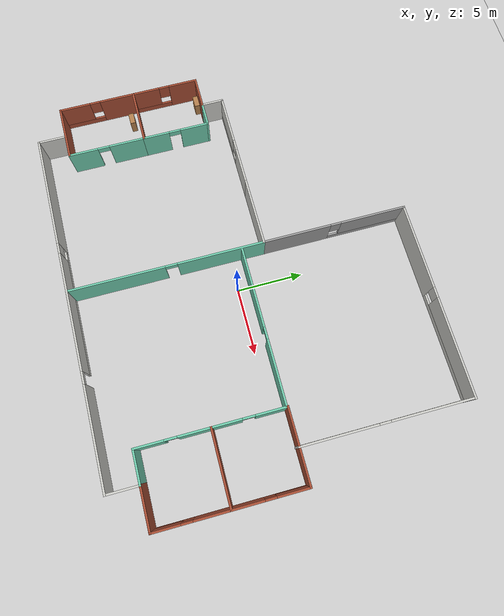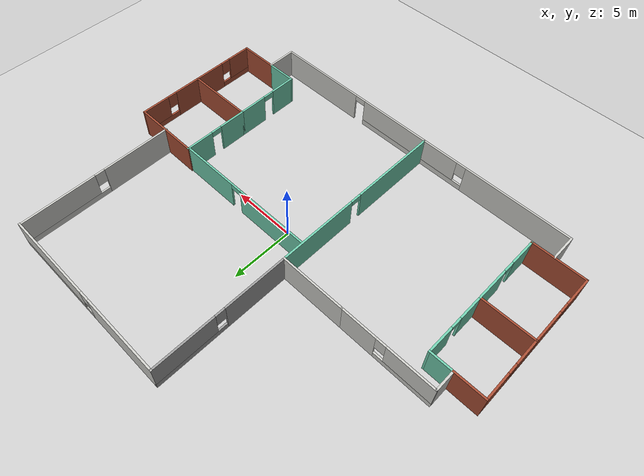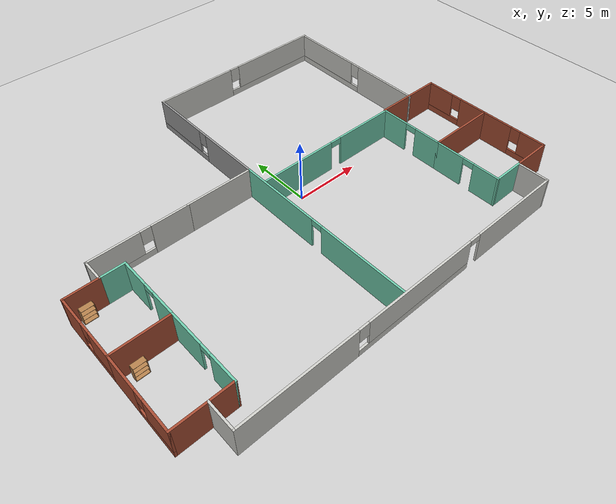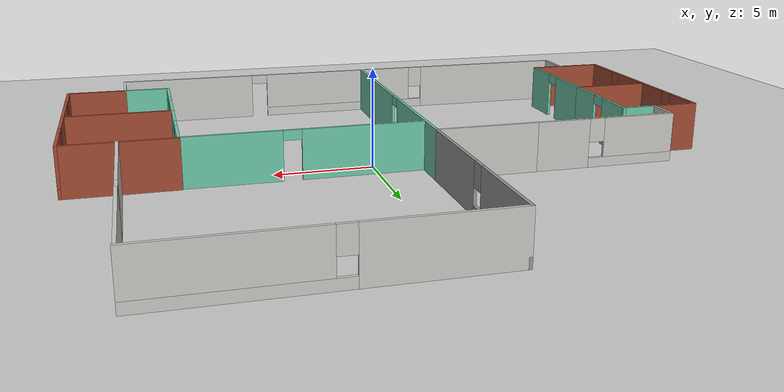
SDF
<sdf version="1.6">
 <world name="default">
  <model name="ground_plane">
   <static>1</static>
   <link name="link">
    <collision name="collision">
     <geometry><plane><normal>0 0 1</normal><size>100 100</size></plane></geometry>
     <surface><friction><ode><mu>100</mu><mu2>50</mu2></ode></friction></surface>
    </collision>
    <visual name="visual">
     <cast_shadows>0</cast_shadows>
     <geometry><plane><normal>0 0 1</normal><size>100 100</size></plane></geometry>
     <material>
      <script><uri>file://media/materials/scripts/gazebo.material</uri><name>Gazebo/Grey</name></script>
     </material>
    </visual>
   </link>
  </model>
  <model name="building">
   <pose>-1.2216 0.74618 0 0 -0 0</pose>
   <link name="Wall_0">
    <pose>-9.9736 1.9034 0 0 -0 3.14159</pose>
    <visual name="Wall_0_Visual_0">
     <pose>-2.29975 0 1.25 0 -0 0</pose>
     <geometry><box><size>2.9005 0.15 2.5</size></box></geometry>
     <material>
      <script><uri>file://media/materials/scripts/gazebo.material</uri><name>Gazebo/CeilingTiled</name></script>
      <ambient>1 1 1 1</ambient>
     </material>
     <meta><layer>0</layer></meta>
    </visual>
    <collision name="Wall_0_Collision_0">
     <geometry><box><size>2.9005 0.15 2.5</size></box></geometry>
     <pose>-2.29975 0 1.25 0 -0 0</pose>
    </collision>
    <visual name="Wall_0_Visual_1">
     <pose>1.45025 0 0.25 0 -0 0</pose>
     <geometry><box><size>4.5995 0.15 0.5</size></box></geometry>
     <material>
      <script><uri>file://media/materials/scripts/gazebo.material</uri><name>Gazebo/CeilingTiled</name></script>
      <ambient>1 1 1 1</ambient>
     </material>
     <meta><layer>0</layer></meta>
    </visual>
    <collision name="Wall_0_Collision_1">
     <geometry><box><size>4.5995 0.15 0.5</size></box></geometry>
     <pose>1.45025 0 0.25 0 -0 0</pose>
    </collision>
    <visual name="Wall_0_Visual_2">
     <pose>1.85025 0 1.5 0 -0 0</pose>
     <geometry><box><size>3.7995 0.15 2</size></box></geometry>
     <material>
      <script><uri>file://media/materials/scripts/gazebo.material</uri><name>Gazebo/CeilingTiled</name></script>
      <ambient>1 1 1 1</ambient>
     </material>
     <meta><layer>0</layer></meta>
    </visual>
    <collision name="Wall_0_Collision_2">
     <geometry><box><size>3.7995 0.15 2</size></box></geometry>
     <pose>1.85025 0 1.5 0 -0 0</pose>
    </collision>
    <visual name="Wall_0_Visual_3">
     <pose>-0.449501 0 1.9 0 -0 0</pose>
     <geometry><box><size>0.8 0.15 1.2</size></box></geometry>
     <material>
      <script><uri>file://media/materials/scripts/gazebo.material</uri><name>Gazebo/CeilingTiled</name></script>
      <ambient>1 1 1 1</ambient>
     </material>
     <meta><layer>0</layer></meta>
    </visual>
    <collision name="Wall_0_Collision_3">
     <geometry><box><size>0.8 0.15 1.2</size></box></geometry>
     <pose>-0.449501 0 1.9 0 -0 0</pose>
    </collision>
   </link>
   <link name="Wall_1">
    <collision name="Wall_1_Collision">
     <geometry><box><size>0.15 0.15 2.5</size></box></geometry>
     <pose>0 0 1.25 0 -0 0</pose>
    </collision>
    <visual name="Wall_1_Visual">
     <pose>0 0 1.25 0 -0 0</pose>
     <geometry><box><size>0.15 0.15 2.5</size></box></geometry>
     <material>
      <script><uri>file://media/materials/scripts/gazebo.material</uri><name>Gazebo/Grey</name></script>
      <ambient>1 1 1 1</ambient>
     </material>
     <meta><layer>0</layer></meta>
    </visual>
    <pose>-13.6486 1.9034 0 0 -0 0</pose>
   </link>
   <link name="Wall_10">
    <collision name="Wall_10_Collision">
     <geometry><box><size>1.9 0.15 2.5</size></box></geometry>
     <pose>0 0 1.25 0 -0 0</pose>
    </collision>
    <visual name="Wall_10_Visual">
     <pose>0 0 1.25 0 -0 0</pose>
     <geometry><box><size>1.9 0.15 2.5</size></box></geometry>
     <material>
      <script><uri>file://media/materials/scripts/gazebo.material</uri><name>Gazebo/Grey</name></script>
      <ambient>0.435294 0.796078 0.67451 1</ambient>
     </material>
     <meta><layer>0</layer></meta>
    </visual>
    <pose>-12.7736 0.303397 0 0 -0 3.14159</pose>
   </link>
   <link name="Wall_12">
    <pose>-15.9986 -7.7216 0 0 0 -1.5708</pose>
    <visual name="Wall_12_Visual_0">
     <pose>-1.61405 0 1.25 0 -0 0</pose>
     <geometry><box><size>2.7719 0.15 2.5</size></box></geometry>
     <material>
      <script><uri>file://media/materials/scripts/gazebo.material</uri><name>Gazebo/Bricks</name></script>
      <ambient>1 1 1 1</ambient>
     </material>
     <meta><layer>0</layer></meta>
    </visual>
    <collision name="Wall_12_Collision_0">
     <geometry><box><size>2.7719 0.15 2.5</size></box></geometry>
     <pose>-1.61405 0 1.25 0 -0 0</pose>
    </collision>
    <visual name="Wall_12_Visual_1">
     <pose>1.38595 0 0.25 0 -0 0</pose>
     <geometry><box><size>3.2281 0.15 0.5</size></box></geometry>
     <material>
      <script><uri>file://media/materials/scripts/gazebo.material</uri><name>Gazebo/Bricks</name></script>
      <ambient>1 1 1 1</ambient>
     </material>
     <meta><layer>0</layer></meta>
    </visual>
    <collision name="Wall_12_Collision_1">
     <geometry><box><size>3.2281 0.15 0.5</size></box></geometry>
     <pose>1.38595 0 0.25 0 -0 0</pose>
    </collision>
    <visual name="Wall_12_Visual_2">
     <pose>1.78595 0 1.5 0 -0 0</pose>
     <geometry><box><size>2.4281 0.15 2</size></box></geometry>
     <material>
      <script><uri>file://media/materials/scripts/gazebo.material</uri><name>Gazebo/Bricks</name></script>
      <ambient>1 1 1 1</ambient>
     </material>
     <meta><layer>0</layer></meta>
    </visual>
    <collision name="Wall_12_Collision_2">
     <geometry><box><size>2.4281 0.15 2</size></box></geometry>
     <pose>1.78595 0 1.5 0 -0 0</pose>
    </collision>
    <visual name="Wall_12_Visual_3">
     <pose>0.171899 0 1.9 0 -0 0</pose>
     <geometry><box><size>0.8 0.15 1.2</size></box></geometry>
     <material>
      <script><uri>file://media/materials/scripts/gazebo.material</uri><name>Gazebo/Bricks</name></script>
      <ambient>1 1 1 1</ambient>
     </material>
     <meta><layer>0</layer></meta>
    </visual>
    <collision name="Wall_12_Collision_3">
     <geometry><box><size>0.8 0.15 1.2</size></box></geometry>
     <pose>0.171899 0 1.9 0 -0 0</pose>
    </collision>
   </link>
   <link name="Wall_13">
    <collision name="Wall_13_Collision">
     <geometry><box><size>4.25 0.15 2.5</size></box></geometry>
     <pose>0 0 1.25 0 -0 0</pose>
    </collision>
    <visual name="Wall_13_Visual">
     <pose>0 0 1.25 0 -0 0</pose>
     <geometry><box><size>4.25 0.15 2.5</size></box></geometry>
     <material>
      <script><uri>file://media/materials/scripts/gazebo.material</uri><name>Gazebo/Bricks</name></script>
      <ambient>1 1 1 1</ambient>
     </material>
     <meta><layer>0</layer></meta>
    </visual>
    <pose>-13.9486 -10.6466 0 0 -0 0</pose>
   </link>
   <link name="Wall_14">
    <pose>-11.8986 -7.7216 0 0 -0 1.5708</pose>
    <visual name="Wall_14_Visual_0">
     <pose>-1.85643 0 1.25 0 -0 0</pose>
     <geometry><box><size>2.28714 0.15 2.5</size></box></geometry>
     <material>
      <script><uri>file://media/materials/scripts/gazebo.material</uri><name>Gazebo/Grey</name></script>
      <ambient>0.435294 0.796078 0.67451 1</ambient>
     </material>
     <meta><layer>0</layer></meta>
    </visual>
    <collision name="Wall_14_Collision_0">
     <geometry><box><size>2.28714 0.15 2.5</size></box></geometry>
     <pose>-1.85643 0 1.25 0 -0 0</pose>
    </collision>
    <visual name="Wall_14_Visual_1">
     <pose>1.59357 0 1.25 0 -0 0</pose>
     <geometry><box><size>2.81286 0.15 2.5</size></box></geometry>
     <material>
      <script><uri>file://media/materials/scripts/gazebo.material</uri><name>Gazebo/Grey</name></script>
      <ambient>0.435294 0.796078 0.67451 1</ambient>
     </material>
     <meta><layer>0</layer></meta>
    </visual>
    <collision name="Wall_14_Collision_1">
     <geometry><box><size>2.81286 0.15 2.5</size></box></geometry>
     <pose>1.59357 0 1.25 0 -0 0</pose>
    </collision>
    <visual name="Wall_14_Visual_2">
     <pose>-0.262862 0 2.25 0 -0 0</pose>
     <geometry><box><size>0.9 0.15 0.5</size></box></geometry>
     <material>
      <script><uri>file://media/materials/scripts/gazebo.material</uri><name>Gazebo/Grey</name></script>
      <ambient>0.435294 0.796078 0.67451 1</ambient>
     </material>
     <meta><layer>0</layer></meta>
    </visual>
    <collision name="Wall_14_Collision_2">
     <geometry><box><size>0.9 0.15 0.5</size></box></geometry>
     <pose>-0.262862 0 2.25 0 -0 0</pose>
    </collision>
   </link>
   <link name="Wall_17">
    <collision name="Wall_17_Collision">
     <geometry><box><size>2.25 0.15 2.5</size></box></geometry>
     <pose>0 0 1.25 0 -0 0</pose>
    </collision>
    <visual name="Wall_17_Visual">
     <pose>0 0 1.25 0 -0 0</pose>
     <geometry><box><size>2.25 0.15 2.5</size></box></geometry>
     <material>
      <script><uri>file://media/materials/scripts/gazebo.material</uri><name>Gazebo/CeilingTiled</name></script>
      <ambient>1 1 1 1</ambient>
     </material>
     <meta><layer>0</layer></meta>
    </visual>
    <pose>-13.6014 -11.7034 0 0 0 -1.5708</pose>
   </link>
   <link name="Wall_176">
    <pose>-1.1986 7.3284 0 0 -0 1.5708</pose>
    <visual name="Wall_176_Visual_0">
     <pose>-2.89271 0 1.25 0 -0 0</pose>
     <geometry><box><size>5.21457 0.15 2.5</size></box></geometry>
     <material>
      <script><uri>file://media/materials/scripts/gazebo.material</uri><name>Gazebo/Grey</name></script>
      <ambient>1 1 1 1</ambient>
     </material>
     <meta><layer>0</layer></meta>
    </visual>
    <collision name="Wall_176_Collision_0">
     <geometry><box><size>5.21457 0.15 2.5</size></box></geometry>
     <pose>-2.89271 0 1.25 0 -0 0</pose>
    </collision>
    <visual name="Wall_176_Visual_1">
     <pose>2.60729 0 0.25 0 -0 0</pose>
     <geometry><box><size>5.78543 0.15 0.5</size></box></geometry>
     <material>
      <script><uri>file://media/materials/scripts/gazebo.material</uri><name>Gazebo/Grey</name></script>
      <ambient>1 1 1 1</ambient>
     </material>
     <meta><layer>0</layer></meta>
    </visual>
    <collision name="Wall_176_Collision_1">
     <geometry><box><size>5.78543 0.15 0.5</size></box></geometry>
     <pose>2.60729 0 0.25 0 -0 0</pose>
    </collision>
    <visual name="Wall_176_Visual_2">
     <pose>3.00728 0 1.5 0 -0 0</pose>
     <geometry><box><size>4.98543 0.15 2</size></box></geometry>
     <material>
      <script><uri>file://media/materials/scripts/gazebo.material</uri><name>Gazebo/Grey</name></script>
      <ambient>1 1 1 1</ambient>
     </material>
     <meta><layer>0</layer></meta>
    </visual>
    <collision name="Wall_176_Collision_2">
     <geometry><box><size>4.98543 0.15 2</size></box></geometry>
     <pose>3.00728 0 1.5 0 -0 0</pose>
    </collision>
    <visual name="Wall_176_Visual_3">
     <pose>0.11457 0 1.9 0 -0 0</pose>
     <geometry><box><size>0.8 0.15 1.2</size></box></geometry>
     <material>
      <script><uri>file://media/materials/scripts/gazebo.material</uri><name>Gazebo/Grey</name></script>
      <ambient>1 1 1 1</ambient>
     </material>
     <meta><layer>0</layer></meta>
    </visual>
    <collision name="Wall_176_Collision_3">
     <geometry><box><size>0.8 0.15 1.2</size></box></geometry>
     <pose>0.11457 0 1.9 0 -0 0</pose>
    </collision>
   </link>
   <link name="Wall_179">
    <pose>6.1014 12.7534 0 0 -0 0</pose>
    <visual name="Wall_179_Visual_0">
     <pose>-4.09779 0 1.25 0 -0 0</pose>
     <geometry><box><size>6.55441 0.15 2.5</size></box></geometry>
     <material>
      <script><uri>file://media/materials/scripts/gazebo.material</uri><name>Gazebo/CeilingTiled</name></script>
      <ambient>1 1 1 1</ambient>
     </material>
     <meta><layer>0</layer></meta>
    </visual>
    <collision name="Wall_179_Collision_0">
     <geometry><box><size>6.55441 0.15 2.5</size></box></geometry>
     <pose>-4.09779 0 1.25 0 -0 0</pose>
    </collision>
    <visual name="Wall_179_Visual_1">
     <pose>3.27721 0 0.25 0 -0 0</pose>
     <geometry><box><size>8.19559 0.15 0.5</size></box></geometry>
     <material>
      <script><uri>file://media/materials/scripts/gazebo.material</uri><name>Gazebo/CeilingTiled</name></script>
      <ambient>1 1 1 1</ambient>
     </material>
     <meta><layer>0</layer></meta>
    </visual>
    <collision name="Wall_179_Collision_1">
     <geometry><box><size>8.19559 0.15 0.5</size></box></geometry>
     <pose>3.27721 0 0.25 0 -0 0</pose>
    </collision>
    <visual name="Wall_179_Visual_2">
     <pose>3.67721 0 1.5 0 -0 0</pose>
     <geometry><box><size>7.39559 0.15 2</size></box></geometry>
     <material>
      <script><uri>file://media/materials/scripts/gazebo.material</uri><name>Gazebo/CeilingTiled</name></script>
      <ambient>1 1 1 1</ambient>
     </material>
     <meta><layer>0</layer></meta>
    </visual>
    <collision name="Wall_179_Collision_2">
     <geometry><box><size>7.39559 0.15 2</size></box></geometry>
     <pose>3.67721 0 1.5 0 -0 0</pose>
    </collision>
    <visual name="Wall_179_Visual_3">
     <pose>-0.420588 0 1.9 0 -0 0</pose>
     <geometry><box><size>0.8 0.15 1.2</size></box></geometry>
     <material>
      <script><uri>file://media/materials/scripts/gazebo.material</uri><name>Gazebo/CeilingTiled</name></script>
      <ambient>1 1 1 1</ambient>
     </material>
     <meta><layer>0</layer></meta>
    </visual>
    <collision name="Wall_179_Collision_3">
     <geometry><box><size>0.8 0.15 1.2</size></box></geometry>
     <pose>-0.420588 0 1.9 0 -0 0</pose>
    </collision>
   </link>
   <link name="Wall_18">
    <pose>-0.301402 -12.7534 0 0 -0 0</pose>
    <visual name="Wall_18_Visual_0">
     <pose>-9.04091 0 1.25 0 -0 0</pose>
     <geometry><box><size>8.66818 0.15 2.5</size></box></geometry>
     <material>
      <script><uri>file://media/materials/scripts/gazebo.material</uri><name>Gazebo/CeilingTiled</name></script>
      <ambient>1 1 1 1</ambient>
     </material>
     <meta><layer>0</layer></meta>
    </visual>
    <collision name="Wall_18_Collision_0">
     <geometry><box><size>8.66818 0.15 2.5</size></box></geometry>
     <pose>-9.04091 0 1.25 0 -0 0</pose>
    </collision>
    <visual name="Wall_18_Visual_1">
     <pose>9.64638 0 1.25 0 -0 0</pose>
     <geometry><box><size>7.45723 0.15 2.5</size></box></geometry>
     <material>
      <script><uri>file://media/materials/scripts/gazebo.material</uri><name>Gazebo/CeilingTiled</name></script>
      <ambient>1 1 1 1</ambient>
     </material>
     <meta><layer>0</layer></meta>
    </visual>
    <collision name="Wall_18_Collision_1">
     <geometry><box><size>7.45723 0.15 2.5</size></box></geometry>
     <pose>9.64638 0 1.25 0 -0 0</pose>
    </collision>
    <visual name="Wall_18_Visual_2">
     <pose>0.155473 0 0.25 0 -0 0</pose>
     <geometry><box><size>9.72459 0.15 0.5</size></box></geometry>
     <material>
      <script><uri>file://media/materials/scripts/gazebo.material</uri><name>Gazebo/CeilingTiled</name></script>
      <ambient>1 1 1 1</ambient>
     </material>
     <meta><layer>0</layer></meta>
    </visual>
    <collision name="Wall_18_Collision_2">
     <geometry><box><size>9.72459 0.15 0.5</size></box></geometry>
     <pose>0.155473 0 0.25 0 -0 0</pose>
    </collision>
    <visual name="Wall_18_Visual_3">
     <pose>0.555473 0 1.5 0 -0 0</pose>
     <geometry><box><size>8.92459 0.15 2</size></box></geometry>
     <material>
      <script><uri>file://media/materials/scripts/gazebo.material</uri><name>Gazebo/CeilingTiled</name></script>
      <ambient>1 1 1 1</ambient>
     </material>
     <meta><layer>0</layer></meta>
    </visual>
    <collision name="Wall_18_Collision_3">
     <geometry><box><size>8.92459 0.15 2</size></box></geometry>
     <pose>0.555473 0 1.5 0 -0 0</pose>
    </collision>
    <visual name="Wall_18_Visual_4">
     <pose>-4.30682 0 1.9 0 -0 0</pose>
     <geometry><box><size>0.8 0.15 1.2</size></box></geometry>
     <material>
      <script><uri>file://media/materials/scripts/gazebo.material</uri><name>Gazebo/CeilingTiled</name></script>
      <ambient>1 1 1 1</ambient>
     </material>
     <meta><layer>0</layer></meta>
    </visual>
    <collision name="Wall_18_Collision_4">
     <geometry><box><size>0.8 0.15 1.2</size></box></geometry>
     <pose>-4.30682 0 1.9 0 -0 0</pose>
    </collision>
    <visual name="Wall_18_Visual_5">
     <pose>5.46777 0 2.25 0 -0 0</pose>
     <geometry><box><size>0.9 0.15 0.5</size></box></geometry>
     <material>
      <script><uri>file://media/materials/scripts/gazebo.material</uri><name>Gazebo/CeilingTiled</name></script>
      <ambient>1 1 1 1</ambient>
     </material>
     <meta><layer>0</layer></meta>
    </visual>
    <collision name="Wall_18_Collision_5">
     <geometry><box><size>0.9 0.15 0.5</size></box></geometry>
     <pose>5.46777 0 2.25 0 -0 0</pose>
    </collision>
   </link>
   <link name="Wall_181">
    <pose>4.74603 0.215542 0 0 -0 0</pose>
    <visual name="Wall_181_Visual_0">
     <pose>-2.83801 0 1.25 0 -0 0</pose>
     <geometry><box><size>6.07398 0.15 2.5</size></box></geometry>
     <material>
      <script><uri>file://media/materials/scripts/gazebo.material</uri><name>Gazebo/Grey</name></script>
      <ambient>0.435294 0.796078 0.67451 1</ambient>
     </material>
     <meta><layer>0</layer></meta>
    </visual>
    <collision name="Wall_181_Collision_0">
     <geometry><box><size>6.07398 0.15 2.5</size></box></geometry>
     <pose>-2.83801 0 1.25 0 -0 0</pose>
    </collision>
    <visual name="Wall_181_Visual_1">
     <pose>3.48699 0 1.25 0 -0 0</pose>
     <geometry><box><size>4.77602 0.15 2.5</size></box></geometry>
     <material>
      <script><uri>file://media/materials/scripts/gazebo.material</uri><name>Gazebo/Grey</name></script>
      <ambient>0.435294 0.796078 0.67451 1</ambient>
     </material>
     <meta><layer>0</layer></meta>
    </visual>
    <collision name="Wall_181_Collision_1">
     <geometry><box><size>4.77602 0.15 2.5</size></box></geometry>
     <pose>3.48699 0 1.25 0 -0 0</pose>
    </collision>
    <visual name="Wall_181_Visual_2">
     <pose>0.648978 0 2.25 0 -0 0</pose>
     <geometry><box><size>0.9 0.15 0.5</size></box></geometry>
     <material>
      <script><uri>file://media/materials/scripts/gazebo.material</uri><name>Gazebo/Grey</name></script>
      <ambient>0.435294 0.796078 0.67451 1</ambient>
     </material>
     <meta><layer>0</layer></meta>
    </visual>
    <collision name="Wall_181_Collision_2">
     <geometry><box><size>0.9 0.15 0.5</size></box></geometry>
     <pose>0.648978 0 2.25 0 -0 0</pose>
    </collision>
   </link>
   <link name="Wall_19">
    <collision name="Wall_19_Collision">
     <geometry><box><size>2.5 0.15 2.5</size></box></geometry>
     <pose>0 0 1.25 0 -0 0</pose>
    </collision>
    <visual name="Wall_19_Visual">
     <pose>0 0 1.25 0 -0 0</pose>
     <geometry><box><size>2.5 0.15 2.5</size></box></geometry>
     <material>
      <script><uri>file://media/materials/scripts/gazebo.material</uri><name>Gazebo/CeilingTiled</name></script>
      <ambient>1 1 1 1</ambient>
     </material>
     <meta><layer>0</layer></meta>
    </visual>
    <pose>12.9986 -11.5784 0 0 -0 1.5708</pose>
   </link>
   <link name="Wall_20">
    <collision name="Wall_20_Collision">
     <geometry><box><size>2.5 0.15 2.5</size></box></geometry>
     <pose>0 0 1.25 0 -0 0</pose>
    </collision>
    <visual name="Wall_20_Visual">
     <pose>0 0 1.25 0 -0 0</pose>
     <geometry><box><size>2.5 0.15 2.5</size></box></geometry>
     <material>
      <script><uri>file://media/materials/scripts/gazebo.material</uri><name>Gazebo/Grey</name></script>
      <ambient>0.435294 0.796078 0.67451 1</ambient>
     </material>
     <meta><layer>0</layer></meta>
    </visual>
    <pose>11.8236 -10.4034 0 0 -0 3.14159</pose>
   </link>
   <link name="Wall_21">
    <pose>10.6486 -7.7284 0 0 -0 1.5708</pose>
    <visual name="Wall_21_Visual_0">
     <pose>-1.65981 0 1.25 0 -0 0</pose>
     <geometry><box><size>2.18038 0.15 2.5</size></box></geometry>
     <material>
      <script><uri>file://media/materials/scripts/gazebo.material</uri><name>Gazebo/Grey</name></script>
      <ambient>0.435294 0.796078 0.67451 1</ambient>
     </material>
     <meta><layer>0</layer></meta>
    </visual>
    <collision name="Wall_21_Collision_0">
     <geometry><box><size>2.18038 0.15 2.5</size></box></geometry>
     <pose>-1.65981 0 1.25 0 -0 0</pose>
    </collision>
    <visual name="Wall_21_Visual_1">
     <pose>1.54019 0 1.25 0 -0 0</pose>
     <geometry><box><size>2.41962 0.15 2.5</size></box></geometry>
     <material>
      <script><uri>file://media/materials/scripts/gazebo.material</uri><name>Gazebo/Grey</name></script>
      <ambient>0.435294 0.796078 0.67451 1</ambient>
     </material>
     <meta><layer>0</layer></meta>
    </visual>
    <collision name="Wall_21_Collision_1">
     <geometry><box><size>2.41962 0.15 2.5</size></box></geometry>
     <pose>1.54019 0 1.25 0 -0 0</pose>
    </collision>
    <visual name="Wall_21_Visual_2">
     <pose>-0.119622 0 2.25 0 -0 0</pose>
     <geometry><box><size>0.9 0.15 0.5</size></box></geometry>
     <material>
      <script><uri>file://media/materials/scripts/gazebo.material</uri><name>Gazebo/Grey</name></script>
      <ambient>0.435294 0.796078 0.67451 1</ambient>
     </material>
     <meta><layer>0</layer></meta>
    </visual>
    <collision name="Wall_21_Collision_2">
     <geometry><box><size>0.9 0.15 0.5</size></box></geometry>
     <pose>-0.119622 0 2.25 0 -0 0</pose>
    </collision>
   </link>
   <link name="Wall_22">
    <collision name="Wall_22_Collision">
     <geometry><box><size>5.5 0.15 2.5</size></box></geometry>
     <pose>0 0 1.25 0 -0 0</pose>
    </collision>
    <visual name="Wall_22_Visual">
     <pose>0 0 1.25 0 -0 0</pose>
     <geometry><box><size>5.5 0.15 2.5</size></box></geometry>
     <material>
      <script><uri>file://media/materials/scripts/gazebo.material</uri><name>Gazebo/Bricks</name></script>
      <ambient>1 1 1 1</ambient>
     </material>
     <meta><layer>0</layer></meta>
    </visual>
    <pose>13.3236 -5.0534 0 0 -0 0</pose>
   </link>
   <link name="Wall_23">
    <pose>15.9986 -7.7284 0 0 0 -1.5708</pose>
    <visual name="Wall_23_Visual_0">
     <pose>-1.4439 0 1.25 0 -0 0</pose>
     <geometry><box><size>2.61219 0.15 2.5</size></box></geometry>
     <material>
      <script><uri>file://media/materials/scripts/gazebo.material</uri><name>Gazebo/Bricks</name></script>
      <ambient>1 1 1 1</ambient>
     </material>
     <meta><layer>0</layer></meta>
    </visual>
    <collision name="Wall_23_Collision_0">
     <geometry><box><size>2.61219 0.15 2.5</size></box></geometry>
     <pose>-1.4439 0 1.25 0 -0 0</pose>
    </collision>
    <visual name="Wall_23_Visual_1">
     <pose>1.3061 0 0.25 0 -0 0</pose>
     <geometry><box><size>2.88781 0.15 0.5</size></box></geometry>
     <material>
      <script><uri>file://media/materials/scripts/gazebo.material</uri><name>Gazebo/Bricks</name></script>
      <ambient>1 1 1 1</ambient>
     </material>
     <meta><layer>0</layer></meta>
    </visual>
    <collision name="Wall_23_Collision_1">
     <geometry><box><size>2.88781 0.15 0.5</size></box></geometry>
     <pose>1.3061 0 0.25 0 -0 0</pose>
    </collision>
    <visual name="Wall_23_Visual_2">
     <pose>1.7061 0 1.5 0 -0 0</pose>
     <geometry><box><size>2.08781 0.15 2</size></box></geometry>
     <material>
      <script><uri>file://media/materials/scripts/gazebo.material</uri><name>Gazebo/Bricks</name></script>
      <ambient>1 1 1 1</ambient>
     </material>
     <meta><layer>0</layer></meta>
    </visual>
    <collision name="Wall_23_Collision_2">
     <geometry><box><size>2.08781 0.15 2</size></box></geometry>
     <pose>1.7061 0 1.5 0 -0 0</pose>
    </collision>
    <visual name="Wall_23_Visual_3">
     <pose>0.262193 0 1.9 0 -0 0</pose>
     <geometry><box><size>0.8 0.15 1.2</size></box></geometry>
     <material>
      <script><uri>file://media/materials/scripts/gazebo.material</uri><name>Gazebo/Bricks</name></script>
      <ambient>1 1 1 1</ambient>
     </material>
     <meta><layer>0</layer></meta>
    </visual>
    <collision name="Wall_23_Collision_3">
     <geometry><box><size>0.8 0.15 1.2</size></box></geometry>
     <pose>0.262193 0 1.9 0 -0 0</pose>
    </collision>
   </link>
   <link name="Wall_24">
    <collision name="Wall_24_Collision">
     <geometry><box><size>3.15 0.15 2.5</size></box></geometry>
     <pose>0 0 1.25 0 -0 0</pose>
    </collision>
    <visual name="Wall_24_Visual">
     <pose>0 0 1.25 0 -0 0</pose>
     <geometry><box><size>3.15 0.15 2.5</size></box></geometry>
     <material>
      <script><uri>file://media/materials/scripts/gazebo.material</uri><name>Gazebo/Bricks</name></script>
      <ambient>1 1 1 1</ambient>
     </material>
     <meta><layer>0</layer></meta>
    </visual>
    <pose>14.4986 -10.4034 0 0 -0 3.14159</pose>
   </link>
   <link name="Wall_26">
    <pose>15.9986 -2.3784 0 0 -0 1.5708</pose>
    <visual name="Wall_26_Visual_0">
     <pose>-1.58019 0 1.25 0 -0 0</pose>
     <geometry><box><size>2.33962 0.15 2.5</size></box></geometry>
     <material>
      <script><uri>file://media/materials/scripts/gazebo.material</uri><name>Gazebo/Bricks</name></script>
      <ambient>1 1 1 1</ambient>
     </material>
     <meta><layer>0</layer></meta>
    </visual>
    <collision name="Wall_26_Collision_0">
     <geometry><box><size>2.33962 0.15 2.5</size></box></geometry>
     <pose>-1.58019 0 1.25 0 -0 0</pose>
    </collision>
    <visual name="Wall_26_Visual_1">
     <pose>1.16981 0 0.25 0 -0 0</pose>
     <geometry><box><size>3.16038 0.15 0.5</size></box></geometry>
     <material>
      <script><uri>file://media/materials/scripts/gazebo.material</uri><name>Gazebo/Bricks</name></script>
      <ambient>1 1 1 1</ambient>
     </material>
     <meta><layer>0</layer></meta>
    </visual>
    <collision name="Wall_26_Collision_1">
     <geometry><box><size>3.16038 0.15 0.5</size></box></geometry>
     <pose>1.16981 0 0.25 0 -0 0</pose>
    </collision>
    <visual name="Wall_26_Visual_2">
     <pose>1.56981 0 1.5 0 -0 0</pose>
     <geometry><box><size>2.36038 0.15 2</size></box></geometry>
     <material>
      <script><uri>file://media/materials/scripts/gazebo.material</uri><name>Gazebo/Bricks</name></script>
      <ambient>1 1 1 1</ambient>
     </material>
     <meta><layer>0</layer></meta>
    </visual>
    <collision name="Wall_26_Collision_2">
     <geometry><box><size>2.36038 0.15 2</size></box></geometry>
     <pose>1.56981 0 1.5 0 -0 0</pose>
    </collision>
    <visual name="Wall_26_Visual_3">
     <pose>-0.010383 0 1.9 0 -0 0</pose>
     <geometry><box><size>0.8 0.15 1.2</size></box></geometry>
     <material>
      <script><uri>file://media/materials/scripts/gazebo.material</uri><name>Gazebo/Bricks</name></script>
      <ambient>1 1 1 1</ambient>
     </material>
     <meta><layer>0</layer></meta>
    </visual>
    <collision name="Wall_26_Collision_3">
     <geometry><box><size>0.8 0.15 1.2</size></box></geometry>
     <pose>-0.010383 0 1.9 0 -0 0</pose>
    </collision>
   </link>
   <link name="Wall_27">
    <collision name="Wall_27_Collision">
     <geometry><box><size>5.5 0.15 2.5</size></box></geometry>
     <pose>0 0 1.25 0 -0 0</pose>
    </collision>
    <visual name="Wall_27_Visual">
     <pose>0 0 1.25 0 -0 0</pose>
     <geometry><box><size>5.5 0.15 2.5</size></box></geometry>
     <material>
      <script><uri>file://media/materials/scripts/gazebo.material</uri><name>Gazebo/Bricks</name></script>
      <ambient>1 1 1 1</ambient>
     </material>
     <meta><layer>0</layer></meta>
    </visual>
    <pose>13.3236 0.296603 0 0 -0 3.14159</pose>
   </link>
   <link name="Wall_28">
    <pose>10.6486 -2.3784 0 0 0 -1.5708</pose>
    <visual name="Wall_28_Visual_0">
     <pose>-1.57137 0 1.25 0 -0 0</pose>
     <geometry><box><size>2.35727 0.15 2.5</size></box></geometry>
     <material>
      <script><uri>file://media/materials/scripts/gazebo.material</uri><name>Gazebo/Grey</name></script>
      <ambient>0.435294 0.796078 0.67451 1</ambient>
     </material>
     <meta><layer>0</layer></meta>
    </visual>
    <collision name="Wall_28_Collision_0">
     <geometry><box><size>2.35727 0.15 2.5</size></box></geometry>
     <pose>-1.57137 0 1.25 0 -0 0</pose>
    </collision>
    <visual name="Wall_28_Visual_1">
     <pose>1.62863 0 1.25 0 -0 0</pose>
     <geometry><box><size>2.24273 0.15 2.5</size></box></geometry>
     <material>
      <script><uri>file://media/materials/scripts/gazebo.material</uri><name>Gazebo/Grey</name></script>
      <ambient>0.435294 0.796078 0.67451 1</ambient>
     </material>
     <meta><layer>0</layer></meta>
    </visual>
    <collision name="Wall_28_Collision_1">
     <geometry><box><size>2.24273 0.15 2.5</size></box></geometry>
     <pose>1.62863 0 1.25 0 -0 0</pose>
    </collision>
    <visual name="Wall_28_Visual_2">
     <pose>0.057266 0 2.25 0 -0 0</pose>
     <geometry><box><size>0.9 0.15 0.5</size></box></geometry>
     <material>
      <script><uri>file://media/materials/scripts/gazebo.material</uri><name>Gazebo/Grey</name></script>
      <ambient>0.435294 0.796078 0.67451 1</ambient>
     </material>
     <meta><layer>0</layer></meta>
    </visual>
    <collision name="Wall_28_Collision_2">
     <geometry><box><size>0.9 0.15 0.5</size></box></geometry>
     <pose>0.057266 0 2.25 0 -0 0</pose>
    </collision>
   </link>
   <link name="Wall_3">
    <collision name="Wall_3_Collision">
     <geometry><box><size>1.75 0.15 2.5</size></box></geometry>
     <pose>0 0 1.25 0 -0 0</pose>
    </collision>
    <visual name="Wall_3_Visual">
     <pose>0 0 1.25 0 -0 0</pose>
     <geometry><box><size>1.75 0.15 2.5</size></box></geometry>
     <material>
      <script><uri>file://media/materials/scripts/gazebo.material</uri><name>Gazebo/CeilingTiled</name></script>
      <ambient>1 1 1 1</ambient>
     </material>
     <meta><layer>0</layer></meta>
    </visual>
    <pose>-13.6486 1.1034 0 0 0 -1.5708</pose>
   </link>
   <link name="Wall_30">
    <pose>13.3634 6.4274 0 0 -0 1.5708</pose>
    <visual name="Wall_30_Visual_0">
     <pose>-3.38883 0 1.25 0 -0 0</pose>
     <geometry><box><size>5.72234 0.15 2.5</size></box></geometry>
     <material>
      <script><uri>file://media/materials/scripts/gazebo.material</uri><name>Gazebo/CeilingTiled</name></script>
      <ambient>1 1 1 1</ambient>
     </material>
     <meta><layer>0</layer></meta>
    </visual>
    <collision name="Wall_30_Collision_0">
     <geometry><box><size>5.72234 0.15 2.5</size></box></geometry>
     <pose>-3.38883 0 1.25 0 -0 0</pose>
    </collision>
    <visual name="Wall_30_Visual_1">
     <pose>2.86117 0 0.25 0 -0 0</pose>
     <geometry><box><size>6.77766 0.15 0.5</size></box></geometry>
     <material>
      <script><uri>file://media/materials/scripts/gazebo.material</uri><name>Gazebo/CeilingTiled</name></script>
      <ambient>1 1 1 1</ambient>
     </material>
     <meta><layer>0</layer></meta>
    </visual>
    <collision name="Wall_30_Collision_1">
     <geometry><box><size>6.77766 0.15 0.5</size></box></geometry>
     <pose>2.86117 0 0.25 0 -0 0</pose>
    </collision>
    <visual name="Wall_30_Visual_2">
     <pose>3.26117 0 1.5 0 -0 0</pose>
     <geometry><box><size>5.97766 0.15 2</size></box></geometry>
     <material>
      <script><uri>file://media/materials/scripts/gazebo.material</uri><name>Gazebo/CeilingTiled</name></script>
      <ambient>1 1 1 1</ambient>
     </material>
     <meta><layer>0</layer></meta>
    </visual>
    <collision name="Wall_30_Collision_2">
     <geometry><box><size>5.97766 0.15 2</size></box></geometry>
     <pose>3.26117 0 1.5 0 -0 0</pose>
    </collision>
    <visual name="Wall_30_Visual_3">
     <pose>-0.127657 0 1.9 0 -0 0</pose>
     <geometry><box><size>0.8 0.15 1.2</size></box></geometry>
     <material>
      <script><uri>file://media/materials/scripts/gazebo.material</uri><name>Gazebo/CeilingTiled</name></script>
      <ambient>1 1 1 1</ambient>
     </material>
     <meta><layer>0</layer></meta>
    </visual>
    <collision name="Wall_30_Collision_3">
     <geometry><box><size>0.8 0.15 1.2</size></box></geometry>
     <pose>-0.127657 0 1.9 0 -0 0</pose>
    </collision>
   </link>
   <link name="Wall_36">
    <collision name="Wall_36_Collision">
     <geometry><box><size>5.25 0.15 2.5</size></box></geometry>
     <pose>0 0 1.25 0 -0 0</pose>
    </collision>
    <visual name="Wall_36_Visual">
     <pose>0 0 1.25 0 -0 0</pose>
     <geometry><box><size>5.25 0.15 2.5</size></box></geometry>
     <material>
      <script><uri>file://media/materials/scripts/gazebo.material</uri><name>Gazebo/CeilingTiled</name></script>
      <ambient>1 1 1 1</ambient>
     </material>
     <meta><layer>0</layer></meta>
    </visual>
    <pose>-3.7486 1.9034 0 0 -0 0</pose>
   </link>
   <link name="Wall_39">
    <pose>-1.1986 -5.3966 0 0 0 -1.5708</pose>
    <visual name="Wall_39_Visual_0">
     <pose>-4.07399 0 1.25 0 -0 0</pose>
     <geometry><box><size>6.60202 0.15 2.5</size></box></geometry>
     <material>
      <script><uri>file://media/materials/scripts/gazebo.material</uri><name>Gazebo/Grey</name></script>
      <ambient>0.435294 0.796078 0.67451 1</ambient>
     </material>
     <meta><layer>0</layer></meta>
    </visual>
    <collision name="Wall_39_Collision_0">
     <geometry><box><size>6.60202 0.15 2.5</size></box></geometry>
     <pose>-4.07399 0 1.25 0 -0 0</pose>
    </collision>
    <visual name="Wall_39_Visual_1">
     <pose>3.75101 0 1.25 0 -0 0</pose>
     <geometry><box><size>7.24798 0.15 2.5</size></box></geometry>
     <material>
      <script><uri>file://media/materials/scripts/gazebo.material</uri><name>Gazebo/Grey</name></script>
      <ambient>0.435294 0.796078 0.67451 1</ambient>
     </material>
     <meta><layer>0</layer></meta>
    </visual>
    <collision name="Wall_39_Collision_1">
     <geometry><box><size>7.24798 0.15 2.5</size></box></geometry>
     <pose>3.75101 0 1.25 0 -0 0</pose>
    </collision>
    <visual name="Wall_39_Visual_2">
     <pose>-0.322984 0 2.25 0 -0 0</pose>
     <geometry><box><size>0.9 0.15 0.5</size></box></geometry>
     <material>
      <script><uri>file://media/materials/scripts/gazebo.material</uri><name>Gazebo/Grey</name></script>
      <ambient>0.435294 0.796078 0.67451 1</ambient>
     </material>
     <meta><layer>0</layer></meta>
    </visual>
    <collision name="Wall_39_Collision_2">
     <geometry><box><size>0.9 0.15 0.5</size></box></geometry>
     <pose>-0.322984 0 2.25 0 -0 0</pose>
    </collision>
   </link>
   <link name="Wall_5">
    <collision name="Wall_5_Collision">
     <geometry><box><size>2.5 0.15 2.5</size></box></geometry>
     <pose>0 0 1.25 0 -0 0</pose>
    </collision>
    <visual name="Wall_5_Visual">
     <pose>0 0 1.25 0 -0 0</pose>
     <geometry><box><size>2.5 0.15 2.5</size></box></geometry>
     <material>
      <script><uri>file://media/materials/scripts/gazebo.material</uri><name>Gazebo/Bricks</name></script>
      <ambient>1 1 1 1</ambient>
     </material>
     <meta><layer>0</layer></meta>
    </visual>
    <pose>-14.8236 0.303397 0 0 -0 3.14159</pose>
   </link>
   <link name="Wall_7">
    <pose>-15.9986 -2.2466 0 0 0 -1.5708</pose>
    <visual name="Wall_7_Visual_0">
     <pose>-1.48619 0 1.25 0 -0 0</pose>
     <geometry><box><size>2.27761 0.15 2.5</size></box></geometry>
     <material>
      <script><uri>file://media/materials/scripts/gazebo.material</uri><name>Gazebo/Bricks</name></script>
      <ambient>1 1 1 1</ambient>
     </material>
     <meta><layer>0</layer></meta>
    </visual>
    <collision name="Wall_7_Collision_0">
     <geometry><box><size>2.27761 0.15 2.5</size></box></geometry>
     <pose>-1.48619 0 1.25 0 -0 0</pose>
    </collision>
    <visual name="Wall_7_Visual_1">
     <pose>1.13881 0 0.25 0 -0 0</pose>
     <geometry><box><size>2.97239 0.15 0.5</size></box></geometry>
     <material>
      <script><uri>file://media/materials/scripts/gazebo.material</uri><name>Gazebo/Bricks</name></script>
      <ambient>1 1 1 1</ambient>
     </material>
     <meta><layer>0</layer></meta>
    </visual>
    <collision name="Wall_7_Collision_1">
     <geometry><box><size>2.97239 0.15 0.5</size></box></geometry>
     <pose>1.13881 0 0.25 0 -0 0</pose>
    </collision>
    <visual name="Wall_7_Visual_2">
     <pose>1.53881 0 1.5 0 -0 0</pose>
     <geometry><box><size>2.17238 0.15 2</size></box></geometry>
     <material>
      <script><uri>file://media/materials/scripts/gazebo.material</uri><name>Gazebo/Bricks</name></script>
      <ambient>1 1 1 1</ambient>
     </material>
     <meta><layer>0</layer></meta>
    </visual>
    <collision name="Wall_7_Collision_2">
     <geometry><box><size>2.17238 0.15 2</size></box></geometry>
     <pose>1.53881 0 1.5 0 -0 0</pose>
    </collision>
    <visual name="Wall_7_Visual_3">
     <pose>0.052615 0 1.9 0 -0 0</pose>
     <geometry><box><size>0.8 0.15 1.2</size></box></geometry>
     <material>
      <script><uri>file://media/materials/scripts/gazebo.material</uri><name>Gazebo/Bricks</name></script>
      <ambient>1 1 1 1</ambient>
     </material>
     <meta><layer>0</layer></meta>
    </visual>
    <collision name="Wall_7_Collision_3">
     <geometry><box><size>0.8 0.15 1.2</size></box></geometry>
     <pose>0.052615 0 1.9 0 -0 0</pose>
    </collision>
   </link>
   <link name="Wall_8">
    <collision name="Wall_8_Collision">
     <geometry><box><size>4.25 0.15 2.5</size></box></geometry>
     <pose>0 0 1.25 0 -0 0</pose>
    </collision>
    <visual name="Wall_8_Visual">
     <pose>0 0 1.25 0 -0 0</pose>
     <geometry><box><size>4.25 0.15 2.5</size></box></geometry>
     <material>
      <script><uri>file://media/materials/scripts/gazebo.material</uri><name>Gazebo/Bricks</name></script>
      <ambient>1 1 1 1</ambient>
     </material>
     <meta><layer>0</layer></meta>
    </visual>
    <pose>-13.9486 -4.7966 0 0 -0 0</pose>
   </link>
   <link name="Wall_9">
    <pose>-11.8986 -2.2466 0 0 -0 1.5708</pose>
    <visual name="Wall_9_Visual_0">
     <pose>-1.58655 0 1.25 0 -0 0</pose>
     <geometry><box><size>2.0769 0.15 2.5</size></box></geometry>
     <material>
      <script><uri>file://media/materials/scripts/gazebo.material</uri><name>Gazebo/Grey</name></script>
      <ambient>0.435294 0.796078 0.67451 1</ambient>
     </material>
     <meta><layer>0</layer></meta>
    </visual>
    <collision name="Wall_9_Collision_0">
     <geometry><box><size>2.0769 0.15 2.5</size></box></geometry>
     <pose>-1.58655 0 1.25 0 -0 0</pose>
    </collision>
    <visual name="Wall_9_Visual_1">
     <pose>1.48845 0 1.25 0 -0 0</pose>
     <geometry><box><size>2.2731 0.15 2.5</size></box></geometry>
     <material>
      <script><uri>file://media/materials/scripts/gazebo.material</uri><name>Gazebo/Grey</name></script>
      <ambient>0.435294 0.796078 0.67451 1</ambient>
     </material>
     <meta><layer>0</layer></meta>
    </visual>
    <collision name="Wall_9_Collision_1">
     <geometry><box><size>2.2731 0.15 2.5</size></box></geometry>
     <pose>1.48845 0 1.25 0 -0 0</pose>
    </collision>
    <visual name="Wall_9_Visual_2">
     <pose>-0.098096 0 2.25 0 -0 0</pose>
     <geometry><box><size>0.9 0.15 0.5</size></box></geometry>
     <material>
      <script><uri>file://media/materials/scripts/gazebo.material</uri><name>Gazebo/Grey</name></script>
      <ambient>0.435294 0.796078 0.67451 1</ambient>
     </material>
     <meta><layer>0</layer></meta>
    </visual>
    <collision name="Wall_9_Collision_2">
     <geometry><box><size>0.9 0.15 0.5</size></box></geometry>
     <pose>-0.098096 0 2.25 0 -0 0</pose>
    </collision>
   </link>
   <static>1</static>
  </model>
  <model name="bookshelf">
   <static>1</static>
   <link name="link">
    <inertial><mass>1</mass></inertial>
    <collision name="back">
     <pose>0 0.005 0.6 0 -0 0</pose>
     <geometry><box><size>0.9 0.01 1.2</size></box></geometry>
    </collision>
    <visual name="visual1">
     <pose>0 0.005 0.6 0 -0 0</pose>
     <geometry><box><size>0.9 0.01 1.2</size></box></geometry>
     <material>
      <script><uri>file://media/materials/scripts/gazebo.material</uri><name>Gazebo/Wood</name></script>
     </material>
    </visual>
    <collision name="left_side">
     <pose>0.45 -0.195 0.6 0 -0 0</pose>
     <geometry><box><size>0.02 0.4 1.2</size></box></geometry>
    </collision>
    <visual name="visual2">
     <pose>0.45 -0.195 0.6 0 -0 0</pose>
     <geometry><box><size>0.02 0.4 1.2</size></box></geometry>
     <material>
      <script><uri>file://media/materials/scripts/gazebo.material</uri><name>Gazebo/Wood</name></script>
     </material>
    </visual>
    <collision name="right_side">
     <pose>-0.45 -0.195 0.6 0 -0 0</pose>
     <geometry><box><size>0.02 0.4 1.2</size></box></geometry>
    </collision>
    <visual name="visual3">
     <pose>-0.45 -0.195 0.6 0 -0 0</pose>
     <geometry><box><size>0.02 0.4 1.2</size></box></geometry>
     <material>
      <script><uri>file://media/materials/scripts/gazebo.material</uri><name>Gazebo/Wood</name></script>
     </material>
    </visual>
    <collision name="bottom">
     <pose>0 -0.195 0.03 0 -0 0</pose>
     <geometry><box><size>0.88 0.4 0.06</size></box></geometry>
    </collision>
    <visual name="visual4">
     <pose>0 -0.195 0.03 0 -0 0</pose>
     <geometry><box><size>0.88 0.4 0.06</size></box></geometry>
     <material>
      <script><uri>file://media/materials/scripts/gazebo.material</uri><name>Gazebo/Wood</name></script>
     </material>
    </visual>
    <collision name="top">
     <pose>0 -0.195 1.19 0 -0 0</pose>
     <geometry><box><size>0.88 0.4 0.02</size></box></geometry>
    </collision>
    <visual name="visual5">
     <pose>0 -0.195 1.19 0 -0 0</pose>
     <geometry><box><size>0.88 0.4 0.02</size></box></geometry>
     <material>
      <script><uri>file://media/materials/scripts/gazebo.material</uri><name>Gazebo/Wood</name></script>
     </material>
    </visual>
    <collision name="low_shelf">
     <pose>0 -0.195 0.43 0 -0 0</pose>
     <geometry><box><size>0.88 0.4 0.02</size></box></geometry>
    </collision>
    <visual name="visual6">
     <pose>0 -0.195 0.43 0 -0 0</pose>
     <geometry><box><size>0.88 0.4 0.02</size></box></geometry>
     <material>
      <script><uri>file://media/materials/scripts/gazebo.material</uri><name>Gazebo/Wood</name></script>
     </material>
    </visual>
    <collision name="high_shelf">
     <pose>0 -0.195 0.8 0 -0 0</pose>
     <geometry><box><size>0.88 0.4 0.02</size></box></geometry>
    </collision>
    <visual name="visual7">
     <pose>0 -0.195 0.8 0 -0 0</pose>
     <geometry><box><size>0.88 0.4 0.02</size></box></geometry>
     <material>
      <script><uri>file://media/materials/scripts/gazebo.material</uri><name>Gazebo/Wood</name></script>
     </material>
    </visual>
   </link>
   <pose>-16.1965 0.957863 0 0 -0 0</pose>
  </model>
  <model name="bookshelf_0">
   <static>1</static>
   <link name="link">
    <inertial><mass>1</mass></inertial>
    <collision name="back">
     <pose>0 0.005 0.6 0 -0 0</pose>
     <geometry><box><size>0.9 0.01 1.2</size></box></geometry>
    </collision>
    <visual name="visual1">
     <pose>0 0.005 0.6 0 -0 0</pose>
     <geometry><box><size>0.9 0.01 1.2</size></box></geometry>
     <material>
      <script><uri>file://media/materials/scripts/gazebo.material</uri><name>Gazebo/Wood</name></script>
     </material>
    </visual>
    <collision name="left_side">
     <pose>0.45 -0.195 0.6 0 -0 0</pose>
     <geometry><box><size>0.02 0.4 1.2</size></box></geometry>
    </collision>
    <visual name="visual2">
     <pose>0.45 -0.195 0.6 0 -0 0</pose>
     <geometry><box><size>0.02 0.4 1.2</size></box></geometry>
     <material>
      <script><uri>file://media/materials/scripts/gazebo.material</uri><name>Gazebo/Wood</name></script>
     </material>
    </visual>
    <collision name="right_side">
     <pose>-0.45 -0.195 0.6 0 -0 0</pose>
     <geometry><box><size>0.02 0.4 1.2</size></box></geometry>
    </collision>
    <visual name="visual3">
     <pose>-0.45 -0.195 0.6 0 -0 0</pose>
     <geometry><box><size>0.02 0.4 1.2</size></box></geometry>
     <material>
      <script><uri>file://media/materials/scripts/gazebo.material</uri><name>Gazebo/Wood</name></script>
     </material>
    </visual>
    <collision name="bottom">
     <pose>0 -0.195 0.03 0 -0 0</pose>
     <geometry><box><size>0.88 0.4 0.06</size></box></geometry>
    </collision>
    <visual name="visual4">
     <pose>0 -0.195 0.03 0 -0 0</pose>
     <geometry><box><size>0.88 0.4 0.06</size></box></geometry>
     <material>
      <script><uri>file://media/materials/scripts/gazebo.material</uri><name>Gazebo/Wood</name></script>
     </material>
    </visual>
    <collision name="top">
     <pose>0 -0.195 1.19 0 -0 0</pose>
     <geometry><box><size>0.88 0.4 0.02</size></box></geometry>
    </collision>
    <visual name="visual5">
     <pose>0 -0.195 1.19 0 -0 0</pose>
     <geometry><box><size>0.88 0.4 0.02</size></box></geometry>
     <material>
      <script><uri>file://media/materials/scripts/gazebo.material</uri><name>Gazebo/Wood</name></script>
     </material>
    </visual>
    <collision name="low_shelf">
     <pose>0 -0.195 0.43 0 -0 0</pose>
     <geometry><box><size>0.88 0.4 0.02</size></box></geometry>
    </collision>
    <visual name="visual6">
     <pose>0 -0.195 0.43 0 -0 0</pose>
     <geometry><box><size>0.88 0.4 0.02</size></box></geometry>
     <material>
      <script><uri>file://media/materials/scripts/gazebo.material</uri><name>Gazebo/Wood</name></script>
     </material>
    </visual>
    <collision name="high_shelf">
     <pose>0 -0.195 0.8 0 -0 0</pose>
     <geometry><box><size>0.88 0.4 0.02</size></box></geometry>
    </collision>
    <visual name="visual7">
     <pose>0 -0.195 0.8 0 -0 0</pose>
     <geometry><box><size>0.88 0.4 0.02</size></box></geometry>
     <material>
      <script><uri>file://media/materials/scripts/gazebo.material</uri><name>Gazebo/Wood</name></script>
     </material>
    </visual>
   </link>
   <pose>-15.9728 -4.45564 0 0 -0 0</pose>
  </model>
 </world>
</sdf>
